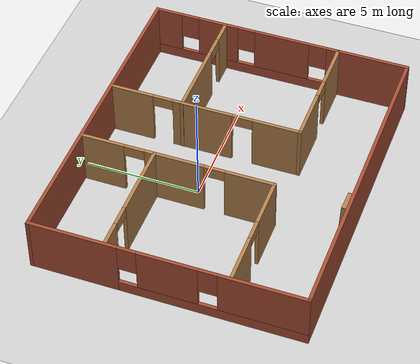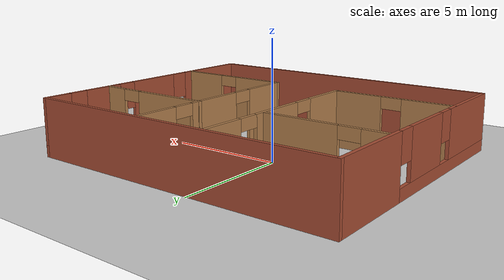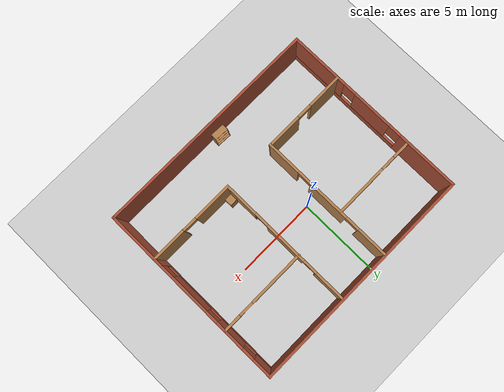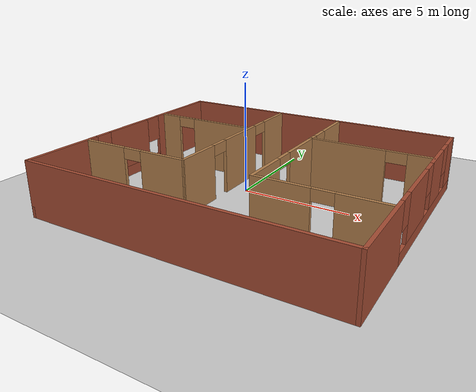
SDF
<sdf version="1.7">
 <world name="default">
  <light name="sun" type="directional">
   <pose>0 0 10 0 -0 0</pose>
   <diffuse>0.8 0.8 0.8 1</diffuse>
   <specular>0.2 0.2 0.2 1</specular>
   <attenuation>
    <range>1000</range>
    <constant>0.9</constant>
    <linear>0.01</linear>
    <quadratic>0.001</quadratic>
   </attenuation>
   <direction>-0.5 0.1 -0.9</direction>
   <spot><inner_angle>0</inner_angle><outer_angle>0</outer_angle><falloff>0</falloff></spot>
  </light>
  <model name="ground_plane">
   <static>1</static>
   <link name="link">
    <collision name="collision">
     <geometry><plane><normal>0 0 1</normal><size>100 100</size></plane></geometry>
     <surface><friction><ode><mu>100</mu><mu2>50</mu2></ode></friction></surface>
    </collision>
    <visual name="visual">
     <cast_shadows>0</cast_shadows>
     <geometry><plane><normal>0 0 1</normal><size>100 100</size></plane></geometry>
     <material>
      <script><uri>file://media/materials/scripts/gazebo.material</uri><name>Gazebo/Grey</name></script>
     </material>
    </visual>
   </link>
  </model>
  <gravity>0 0 -9.8</gravity>
  <magnetic_field>6e-06 2.3e-05 -4.2e-05</magnetic_field>
  <atmosphere type="adiabatic"/>
  <physics type="ode">
   <max_step_size>0.001</max_step_size>
   <real_time_factor>1</real_time_factor>
   <real_time_update_rate>1000</real_time_update_rate>
  </physics>
  <scene><ambient>0.4 0.4 0.4 1</ambient><background>0.7 0.7 0.7 1</background><shadows>1</shadows></scene>
  <audio><device>default</device></audio>
  <spherical_coordinates>
   <surface_model>EARTH_WGS84</surface_model>
   <latitude_deg>0</latitude_deg>
   <longitude_deg>0</longitude_deg>
   <elevation>0</elevation>
   <heading_deg>0</heading_deg>
  </spherical_coordinates>
  <model name="my_floor">
   <pose>0.930019 -0.93997 0 0 -0 0</pose>
   <link name="Wall_0">
    <pose>-6.925 0 0 0 -0 -1.5708</pose>
    <visual name="Wall_0_Visual_0">
     <pose>-3.94316 0 1.25 0 -0 0</pose>
     <geometry><box><size>3.86368 0.15 2.5</size></box></geometry>
     <material>
      <script><uri>file://media/materials/scripts/gazebo.material</uri><name>Gazebo/Bricks</name></script>
      <ambient>1 1 1 1</ambient>
     </material>
     <meta><layer>0</layer></meta>
    </visual>
    <collision name="Wall_0_Collision_0">
     <geometry><box><size>3.86368 0.15 2.5</size></box></geometry>
     <pose>-3.94316 0 1.25 0 -0 0</pose>
    </collision>
    <visual name="Wall_0_Visual_1">
     <pose>1.93184 0 0.25 0 -0 0</pose>
     <geometry><box><size>7.88632 0.15 0.5</size></box></geometry>
     <material>
      <script><uri>file://media/materials/scripts/gazebo.material</uri><name>Gazebo/Bricks</name></script>
      <ambient>1 1 1 1</ambient>
     </material>
     <meta><layer>0</layer></meta>
    </visual>
    <collision name="Wall_0_Collision_1">
     <geometry><box><size>7.88632 0.15 0.5</size></box></geometry>
     <pose>1.93184 0 0.25 0 -0 0</pose>
    </collision>
    <visual name="Wall_0_Visual_2">
     <pose>0.061646 0 1.5 0 -0 0</pose>
     <geometry><box><size>2.54592 0.15 2</size></box></geometry>
     <material>
      <script><uri>file://media/materials/scripts/gazebo.material</uri><name>Gazebo/Bricks</name></script>
      <ambient>1 1 1 1</ambient>
     </material>
     <meta><layer>0</layer></meta>
    </visual>
    <collision name="Wall_0_Collision_2">
     <geometry><box><size>2.54592 0.15 2</size></box></geometry>
     <pose>0.061646 0 1.5 0 -0 0</pose>
    </collision>
    <visual name="Wall_0_Visual_3">
     <pose>4.0048 0 1.5 0 -0 0</pose>
     <geometry><box><size>3.74039 0.15 2</size></box></geometry>
     <material>
      <script><uri>file://media/materials/scripts/gazebo.material</uri><name>Gazebo/Bricks</name></script>
      <ambient>1 1 1 1</ambient>
     </material>
     <meta><layer>0</layer></meta>
    </visual>
    <collision name="Wall_0_Collision_3">
     <geometry><box><size>3.74039 0.15 2</size></box></geometry>
     <pose>4.0048 0 1.5 0 -0 0</pose>
    </collision>
    <visual name="Wall_0_Visual_4">
     <pose>-1.61132 0 1.9 0 -0 0</pose>
     <geometry><box><size>0.8 0.15 1.2</size></box></geometry>
     <material>
      <script><uri>file://media/materials/scripts/gazebo.material</uri><name>Gazebo/Bricks</name></script>
      <ambient>1 1 1 1</ambient>
     </material>
     <meta><layer>0</layer></meta>
    </visual>
    <collision name="Wall_0_Collision_4">
     <geometry><box><size>0.8 0.15 1.2</size></box></geometry>
     <pose>-1.61132 0 1.9 0 -0 0</pose>
    </collision>
    <visual name="Wall_0_Visual_5">
     <pose>1.73461 0 1.9 0 -0 0</pose>
     <geometry><box><size>0.8 0.15 1.2</size></box></geometry>
     <material>
      <script><uri>file://media/materials/scripts/gazebo.material</uri><name>Gazebo/Bricks</name></script>
      <ambient>1 1 1 1</ambient>
     </material>
     <meta><layer>0</layer></meta>
    </visual>
    <collision name="Wall_0_Collision_5">
     <geometry><box><size>0.8 0.15 1.2</size></box></geometry>
     <pose>1.73461 0 1.9 0 -0 0</pose>
    </collision>
   </link>
   <link name="Wall_1">
    <collision name="Wall_1_Collision">
     <geometry><box><size>14 0.15 2.5</size></box></geometry>
     <pose>0 0 1.25 0 -0 0</pose>
    </collision>
    <visual name="Wall_1_Visual">
     <pose>0 0 1.25 0 -0 0</pose>
     <geometry><box><size>14 0.15 2.5</size></box></geometry>
     <material>
      <script><uri>file://media/materials/scripts/gazebo.material</uri><name>Gazebo/Bricks</name></script>
      <ambient>1 1 1 1</ambient>
     </material>
     <meta><layer>0</layer></meta>
    </visual>
    <pose>-0 -5.8 0 0 -0 0</pose>
   </link>
   <link name="Wall_10">
    <pose>-1.67435 1.53233 0 0 -0 1.5708</pose>
    <visual name="Wall_10_Visual_0">
     <pose>-3.15528 0 1.25 0 -0 0</pose>
     <geometry><box><size>2.18945 0.15 2.5</size></box></geometry>
     <material>
      <script><uri>file://media/materials/scripts/gazebo.material</uri><name>Gazebo/Wood</name></script>
      <ambient>1 1 1 1</ambient>
     </material>
     <meta><layer>0</layer></meta>
    </visual>
    <collision name="Wall_10_Collision_0">
     <geometry><box><size>2.18945 0.15 2.5</size></box></geometry>
     <pose>-3.15528 0 1.25 0 -0 0</pose>
    </collision>
    <visual name="Wall_10_Visual_1">
     <pose>0.141234 0 1.25 0 -0 0</pose>
     <geometry><box><size>2.60358 0.15 2.5</size></box></geometry>
     <material>
      <script><uri>file://media/materials/scripts/gazebo.material</uri><name>Gazebo/Wood</name></script>
      <ambient>1 1 1 1</ambient>
     </material>
     <meta><layer>0</layer></meta>
    </visual>
    <collision name="Wall_10_Collision_1">
     <geometry><box><size>2.60358 0.15 2.5</size></box></geometry>
     <pose>0.141234 0 1.25 0 -0 0</pose>
    </collision>
    <visual name="Wall_10_Visual_2">
     <pose>3.29651 0 1.25 0 -0 0</pose>
     <geometry><box><size>1.90698 0.15 2.5</size></box></geometry>
     <material>
      <script><uri>file://media/materials/scripts/gazebo.material</uri><name>Gazebo/Wood</name></script>
      <ambient>1 1 1 1</ambient>
     </material>
     <meta><layer>0</layer></meta>
    </visual>
    <collision name="Wall_10_Collision_2">
     <geometry><box><size>1.90698 0.15 2.5</size></box></geometry>
     <pose>3.29651 0 1.25 0 -0 0</pose>
    </collision>
    <visual name="Wall_10_Visual_3">
     <pose>-1.61055 0 2.25 0 -0 0</pose>
     <geometry><box><size>0.9 0.15 0.5</size></box></geometry>
     <material>
      <script><uri>file://media/materials/scripts/gazebo.material</uri><name>Gazebo/Wood</name></script>
      <ambient>1 1 1 1</ambient>
     </material>
     <meta><layer>0</layer></meta>
    </visual>
    <collision name="Wall_10_Collision_3">
     <geometry><box><size>0.9 0.15 0.5</size></box></geometry>
     <pose>-1.61055 0 2.25 0 -0 0</pose>
    </collision>
    <visual name="Wall_10_Visual_4">
     <pose>1.89302 0 2.25 0 -0 0</pose>
     <geometry><box><size>0.9 0.15 0.5</size></box></geometry>
     <material>
      <script><uri>file://media/materials/scripts/gazebo.material</uri><name>Gazebo/Wood</name></script>
      <ambient>1 1 1 1</ambient>
     </material>
     <meta><layer>0</layer></meta>
    </visual>
    <collision name="Wall_10_Collision_4">
     <geometry><box><size>0.9 0.15 0.5</size></box></geometry>
     <pose>1.89302 0 2.25 0 -0 0</pose>
    </collision>
   </link>
   <link name="Wall_13">
    <pose>-4.2302 2.54418 0 0 -0 3.14159</pose>
    <visual name="Wall_13_Visual_0">
     <pose>-0.972871 0 1.25 0 -0 0</pose>
     <geometry><box><size>3.30426 0.15 2.5</size></box></geometry>
     <material>
      <script><uri>file://media/materials/scripts/gazebo.material</uri><name>Gazebo/Wood</name></script>
      <ambient>1 1 1 1</ambient>
     </material>
     <meta><layer>0</layer></meta>
    </visual>
    <collision name="Wall_13_Collision_0">
     <geometry><box><size>3.30426 0.15 2.5</size></box></geometry>
     <pose>-0.972871 0 1.25 0 -0 0</pose>
    </collision>
    <visual name="Wall_13_Visual_1">
     <pose>2.10213 0 1.25 0 -0 0</pose>
     <geometry><box><size>1.04574 0.15 2.5</size></box></geometry>
     <material>
      <script><uri>file://media/materials/scripts/gazebo.material</uri><name>Gazebo/Wood</name></script>
      <ambient>1 1 1 1</ambient>
     </material>
     <meta><layer>0</layer></meta>
    </visual>
    <collision name="Wall_13_Collision_1">
     <geometry><box><size>1.04574 0.15 2.5</size></box></geometry>
     <pose>2.10213 0 1.25 0 -0 0</pose>
    </collision>
    <visual name="Wall_13_Visual_2">
     <pose>1.12926 0 2.25 0 -0 0</pose>
     <geometry><box><size>0.9 0.15 0.5</size></box></geometry>
     <material>
      <script><uri>file://media/materials/scripts/gazebo.material</uri><name>Gazebo/Wood</name></script>
      <ambient>1 1 1 1</ambient>
     </material>
     <meta><layer>0</layer></meta>
    </visual>
    <collision name="Wall_13_Collision_2">
     <geometry><box><size>0.9 0.15 0.5</size></box></geometry>
     <pose>1.12926 0 2.25 0 -0 0</pose>
    </collision>
   </link>
   <link name="Wall_15">
    <pose>4.20189 -2.68336 0 0 -0 0</pose>
    <visual name="Wall_15_Visual_0">
     <pose>-1.52074 0 1.25 0 -0 0</pose>
     <geometry><box><size>2.45852 0.15 2.5</size></box></geometry>
     <material>
      <script><uri>file://media/materials/scripts/gazebo.material</uri><name>Gazebo/Wood</name></script>
      <ambient>1 1 1 1</ambient>
     </material>
     <meta><layer>0</layer></meta>
    </visual>
    <collision name="Wall_15_Collision_0">
     <geometry><box><size>2.45852 0.15 2.5</size></box></geometry>
     <pose>-1.52074 0 1.25 0 -0 0</pose>
    </collision>
    <visual name="Wall_15_Visual_1">
     <pose>1.67926 0 1.25 0 -0 0</pose>
     <geometry><box><size>2.14148 0.15 2.5</size></box></geometry>
     <material>
      <script><uri>file://media/materials/scripts/gazebo.material</uri><name>Gazebo/Wood</name></script>
      <ambient>1 1 1 1</ambient>
     </material>
     <meta><layer>0</layer></meta>
    </visual>
    <collision name="Wall_15_Collision_1">
     <geometry><box><size>2.14148 0.15 2.5</size></box></geometry>
     <pose>1.67926 0 1.25 0 -0 0</pose>
    </collision>
    <visual name="Wall_15_Visual_2">
     <pose>0.158523 0 2.25 0 -0 0</pose>
     <geometry><box><size>0.9 0.15 0.5</size></box></geometry>
     <material>
      <script><uri>file://media/materials/scripts/gazebo.material</uri><name>Gazebo/Wood</name></script>
      <ambient>1 1 1 1</ambient>
     </material>
     <meta><layer>0</layer></meta>
    </visual>
    <collision name="Wall_15_Collision_2">
     <geometry><box><size>0.9 0.15 0.5</size></box></geometry>
     <pose>0.158523 0 2.25 0 -0 0</pose>
    </collision>
   </link>
   <link name="Wall_17">
    <pose>1.52689 1.49164 0 0 -0 1.5708</pose>
    <visual name="Wall_17_Visual_0">
     <pose>-3.1709 0 1.25 0 -0 0</pose>
     <geometry><box><size>2.15819 0.15 2.5</size></box></geometry>
     <material>
      <script><uri>file://media/materials/scripts/gazebo.material</uri><name>Gazebo/Wood</name></script>
      <ambient>1 1 1 1</ambient>
     </material>
     <meta><layer>0</layer></meta>
    </visual>
    <collision name="Wall_17_Collision_0">
     <geometry><box><size>2.15819 0.15 2.5</size></box></geometry>
     <pose>-3.1709 0 1.25 0 -0 0</pose>
    </collision>
    <visual name="Wall_17_Visual_1">
     <pose>0.140204 0 1.25 0 -0 0</pose>
     <geometry><box><size>2.66402 0.15 2.5</size></box></geometry>
     <material>
      <script><uri>file://media/materials/scripts/gazebo.material</uri><name>Gazebo/Wood</name></script>
      <ambient>1 1 1 1</ambient>
     </material>
     <meta><layer>0</layer></meta>
    </visual>
    <collision name="Wall_17_Collision_1">
     <geometry><box><size>2.66402 0.15 2.5</size></box></geometry>
     <pose>0.140204 0 1.25 0 -0 0</pose>
    </collision>
    <visual name="Wall_17_Visual_2">
     <pose>3.31111 0 1.25 0 -0 0</pose>
     <geometry><box><size>1.87779 0.15 2.5</size></box></geometry>
     <material>
      <script><uri>file://media/materials/scripts/gazebo.material</uri><name>Gazebo/Wood</name></script>
      <ambient>1 1 1 1</ambient>
     </material>
     <meta><layer>0</layer></meta>
    </visual>
    <collision name="Wall_17_Collision_2">
     <geometry><box><size>1.87779 0.15 2.5</size></box></geometry>
     <pose>3.31111 0 1.25 0 -0 0</pose>
    </collision>
    <visual name="Wall_17_Visual_3">
     <pose>-1.64181 0 2.25 0 -0 0</pose>
     <geometry><box><size>0.9 0.15 0.5</size></box></geometry>
     <material>
      <script><uri>file://media/materials/scripts/gazebo.material</uri><name>Gazebo/Wood</name></script>
      <ambient>1 1 1 1</ambient>
     </material>
     <meta><layer>0</layer></meta>
    </visual>
    <collision name="Wall_17_Collision_3">
     <geometry><box><size>0.9 0.15 0.5</size></box></geometry>
     <pose>-1.64181 0 2.25 0 -0 0</pose>
    </collision>
    <visual name="Wall_17_Visual_4">
     <pose>1.92221 0 2.25 0 -0 0</pose>
     <geometry><box><size>0.9 0.15 0.5</size></box></geometry>
     <material>
      <script><uri>file://media/materials/scripts/gazebo.material</uri><name>Gazebo/Wood</name></script>
      <ambient>1 1 1 1</ambient>
     </material>
     <meta><layer>0</layer></meta>
    </visual>
    <collision name="Wall_17_Collision_4">
     <geometry><box><size>0.9 0.15 0.5</size></box></geometry>
     <pose>1.92221 0 2.25 0 -0 0</pose>
    </collision>
   </link>
   <link name="Wall_2">
    <pose>6.925 0 0 0 -0 1.5708</pose>
    <visual name="Wall_2_Visual_0">
     <pose>-4.01695 0 1.25 0 -0 0</pose>
     <geometry><box><size>3.71611 0.15 2.5</size></box></geometry>
     <material>
      <script><uri>file://media/materials/scripts/gazebo.material</uri><name>Gazebo/Bricks</name></script>
      <ambient>1 1 1 1</ambient>
     </material>
     <meta><layer>0</layer></meta>
    </visual>
    <collision name="Wall_2_Collision_0">
     <geometry><box><size>3.71611 0.15 2.5</size></box></geometry>
     <pose>-4.01695 0 1.25 0 -0 0</pose>
    </collision>
    <visual name="Wall_2_Visual_1">
     <pose>1.85805 0 0.25 0 -0 0</pose>
     <geometry><box><size>8.03389 0.15 0.5</size></box></geometry>
     <material>
      <script><uri>file://media/materials/scripts/gazebo.material</uri><name>Gazebo/Bricks</name></script>
      <ambient>1 1 1 1</ambient>
     </material>
     <meta><layer>0</layer></meta>
    </visual>
    <collision name="Wall_2_Collision_1">
     <geometry><box><size>8.03389 0.15 0.5</size></box></geometry>
     <pose>1.85805 0 0.25 0 -0 0</pose>
    </collision>
    <visual name="Wall_2_Visual_2">
     <pose>-0.099524 0 1.5 0 -0 0</pose>
     <geometry><box><size>2.51874 0.15 2</size></box></geometry>
     <material>
      <script><uri>file://media/materials/scripts/gazebo.material</uri><name>Gazebo/Bricks</name></script>
      <ambient>1 1 1 1</ambient>
     </material>
     <meta><layer>0</layer></meta>
    </visual>
    <collision name="Wall_2_Collision_2">
     <geometry><box><size>2.51874 0.15 2</size></box></geometry>
     <pose>-0.099524 0 1.5 0 -0 0</pose>
    </collision>
    <visual name="Wall_2_Visual_3">
     <pose>2.88734 0 1.5 0 -0 0</pose>
     <geometry><box><size>1.85499 0.15 2</size></box></geometry>
     <material>
      <script><uri>file://media/materials/scripts/gazebo.material</uri><name>Gazebo/Bricks</name></script>
      <ambient>1 1 1 1</ambient>
     </material>
     <meta><layer>0</layer></meta>
    </visual>
    <collision name="Wall_2_Collision_3">
     <geometry><box><size>1.85499 0.15 2</size></box></geometry>
     <pose>2.88734 0 1.5 0 -0 0</pose>
    </collision>
    <visual name="Wall_2_Visual_4">
     <pose>5.24492 0 1.5 0 -0 0</pose>
     <geometry><box><size>1.26016 0.15 2</size></box></geometry>
     <material>
      <script><uri>file://media/materials/scripts/gazebo.material</uri><name>Gazebo/Bricks</name></script>
      <ambient>1 1 1 1</ambient>
     </material>
     <meta><layer>0</layer></meta>
    </visual>
    <collision name="Wall_2_Collision_4">
     <geometry><box><size>1.26016 0.15 2</size></box></geometry>
     <pose>5.24492 0 1.5 0 -0 0</pose>
    </collision>
    <visual name="Wall_2_Visual_5">
     <pose>-1.75889 0 1.9 0 -0 0</pose>
     <geometry><box><size>0.8 0.15 1.2</size></box></geometry>
     <material>
      <script><uri>file://media/materials/scripts/gazebo.material</uri><name>Gazebo/Bricks</name></script>
      <ambient>1 1 1 1</ambient>
     </material>
     <meta><layer>0</layer></meta>
    </visual>
    <collision name="Wall_2_Collision_5">
     <geometry><box><size>0.8 0.15 1.2</size></box></geometry>
     <pose>-1.75889 0 1.9 0 -0 0</pose>
    </collision>
    <visual name="Wall_2_Visual_6">
     <pose>1.55985 0 1.9 0 -0 0</pose>
     <geometry><box><size>0.8 0.15 1.2</size></box></geometry>
     <material>
      <script><uri>file://media/materials/scripts/gazebo.material</uri><name>Gazebo/Bricks</name></script>
      <ambient>1 1 1 1</ambient>
     </material>
     <meta><layer>0</layer></meta>
    </visual>
    <collision name="Wall_2_Collision_6">
     <geometry><box><size>0.8 0.15 1.2</size></box></geometry>
     <pose>1.55985 0 1.9 0 -0 0</pose>
    </collision>
    <visual name="Wall_2_Visual_7">
     <pose>4.21484 0 1.9 0 -0 0</pose>
     <geometry><box><size>0.8 0.15 1.2</size></box></geometry>
     <material>
      <script><uri>file://media/materials/scripts/gazebo.material</uri><name>Gazebo/Bricks</name></script>
      <ambient>1 1 1 1</ambient>
     </material>
     <meta><layer>0</layer></meta>
    </visual>
    <collision name="Wall_2_Collision_7">
     <geometry><box><size>0.8 0.15 1.2</size></box></geometry>
     <pose>4.21484 0 1.9 0 -0 0</pose>
    </collision>
   </link>
   <link name="Wall_22">
    <pose>4.18054 2.55201 0 0 -0 0</pose>
    <visual name="Wall_22_Visual_0">
     <pose>-0.999502 0 1.25 0 -0 0</pose>
     <geometry><box><size>3.501 0.15 2.5</size></box></geometry>
     <material>
      <script><uri>file://media/materials/scripts/gazebo.material</uri><name>Gazebo/Wood</name></script>
      <ambient>1 1 1 1</ambient>
     </material>
     <meta><layer>0</layer></meta>
    </visual>
    <collision name="Wall_22_Collision_0">
     <geometry><box><size>3.501 0.15 2.5</size></box></geometry>
     <pose>-0.999502 0 1.25 0 -0 0</pose>
    </collision>
    <visual name="Wall_22_Visual_1">
     <pose>2.2005 0 1.25 0 -0 0</pose>
     <geometry><box><size>1.099 0.15 2.5</size></box></geometry>
     <material>
      <script><uri>file://media/materials/scripts/gazebo.material</uri><name>Gazebo/Wood</name></script>
      <ambient>1 1 1 1</ambient>
     </material>
     <meta><layer>0</layer></meta>
    </visual>
    <collision name="Wall_22_Collision_1">
     <geometry><box><size>1.099 0.15 2.5</size></box></geometry>
     <pose>2.2005 0 1.25 0 -0 0</pose>
    </collision>
    <visual name="Wall_22_Visual_2">
     <pose>1.201 0 2.25 0 -0 0</pose>
     <geometry><box><size>0.9 0.15 0.5</size></box></geometry>
     <material>
      <script><uri>file://media/materials/scripts/gazebo.material</uri><name>Gazebo/Wood</name></script>
      <ambient>1 1 1 1</ambient>
     </material>
     <meta><layer>0</layer></meta>
    </visual>
    <collision name="Wall_22_Collision_2">
     <geometry><box><size>0.9 0.15 0.5</size></box></geometry>
     <pose>1.201 0 2.25 0 -0 0</pose>
    </collision>
   </link>
   <link name="Wall_3">
    <collision name="Wall_3_Collision">
     <geometry><box><size>14 0.15 2.5</size></box></geometry>
     <pose>0 0 1.25 0 -0 0</pose>
    </collision>
    <visual name="Wall_3_Visual">
     <pose>0 0 1.25 0 -0 0</pose>
     <geometry><box><size>14 0.15 2.5</size></box></geometry>
     <material>
      <script><uri>file://media/materials/scripts/gazebo.material</uri><name>Gazebo/Bricks</name></script>
      <ambient>1 1 1 1</ambient>
     </material>
     <meta><layer>0</layer></meta>
    </visual>
    <pose>-0 5.8 0 0 -0 3.14159</pose>
   </link>
   <link name="Wall_9">
    <pose>-4.28811 -2.65424 0 0 -0 0.004425</pose>
    <visual name="Wall_9_Visual_0">
     <pose>-1.57095 0 1.25 0 -0 0</pose>
     <geometry><box><size>2.23568 0.15 2.5</size></box></geometry>
     <material>
      <script><uri>file://media/materials/scripts/gazebo.material</uri><name>Gazebo/Wood</name></script>
      <ambient>1 1 1 1</ambient>
     </material>
     <meta><layer>0</layer></meta>
    </visual>
    <collision name="Wall_9_Collision_0">
     <geometry><box><size>2.23568 0.15 2.5</size></box></geometry>
     <pose>-1.57095 0 1.25 0 -0 0</pose>
    </collision>
    <visual name="Wall_9_Visual_1">
     <pose>1.56784 0 1.25 0 -0 0</pose>
     <geometry><box><size>2.24189 0.15 2.5</size></box></geometry>
     <material>
      <script><uri>file://media/materials/scripts/gazebo.material</uri><name>Gazebo/Wood</name></script>
      <ambient>1 1 1 1</ambient>
     </material>
     <meta><layer>0</layer></meta>
    </visual>
    <collision name="Wall_9_Collision_1">
     <geometry><box><size>2.24189 0.15 2.5</size></box></geometry>
     <pose>1.56784 0 1.25 0 -0 0</pose>
    </collision>
    <visual name="Wall_9_Visual_2">
     <pose>-0.003105 0 2.25 0 -0 0</pose>
     <geometry><box><size>0.9 0.15 0.5</size></box></geometry>
     <material>
      <script><uri>file://media/materials/scripts/gazebo.material</uri><name>Gazebo/Wood</name></script>
      <ambient>1 1 1 1</ambient>
     </material>
     <meta><layer>0</layer></meta>
    </visual>
    <collision name="Wall_9_Collision_2">
     <geometry><box><size>0.9 0.15 0.5</size></box></geometry>
     <pose>-0.003105 0 2.25 0 -0 0</pose>
    </collision>
   </link>
   <static>1</static>
  </model>
  <model name="bookshelf">
   <static>1</static>
   <link name="link">
    <inertial><mass>1</mass></inertial>
    <collision name="back">
     <pose>0 0.005 0.6 0 -0 0</pose>
     <geometry><box><size>0.9 0.01 1.2</size></box></geometry>
    </collision>
    <visual name="visual1">
     <pose>0 0.005 0.6 0 -0 0</pose>
     <geometry><box><size>0.9 0.01 1.2</size></box></geometry>
     <material>
      <script><uri>file://media/materials/scripts/gazebo.material</uri><name>Gazebo/Wood</name></script>
     </material>
    </visual>
    <collision name="left_side">
     <pose>0.45 -0.195 0.6 0 -0 0</pose>
     <geometry><box><size>0.02 0.4 1.2</size></box></geometry>
    </collision>
    <visual name="visual2">
     <pose>0.45 -0.195 0.6 0 -0 0</pose>
     <geometry><box><size>0.02 0.4 1.2</size></box></geometry>
     <material>
      <script><uri>file://media/materials/scripts/gazebo.material</uri><name>Gazebo/Wood</name></script>
     </material>
    </visual>
    <collision name="right_side">
     <pose>-0.45 -0.195 0.6 0 -0 0</pose>
     <geometry><box><size>0.02 0.4 1.2</size></box></geometry>
    </collision>
    <visual name="visual3">
     <pose>-0.45 -0.195 0.6 0 -0 0</pose>
     <geometry><box><size>0.02 0.4 1.2</size></box></geometry>
     <material>
      <script><uri>file://media/materials/scripts/gazebo.material</uri><name>Gazebo/Wood</name></script>
     </material>
    </visual>
    <collision name="bottom">
     <pose>0 -0.195 0.03 0 -0 0</pose>
     <geometry><box><size>0.88 0.4 0.06</size></box></geometry>
    </collision>
    <visual name="visual4">
     <pose>0 -0.195 0.03 0 -0 0</pose>
     <geometry><box><size>0.88 0.4 0.06</size></box></geometry>
     <material>
      <script><uri>file://media/materials/scripts/gazebo.material</uri><name>Gazebo/Wood</name></script>
     </material>
    </visual>
    <collision name="top">
     <pose>0 -0.195 1.19 0 -0 0</pose>
     <geometry><box><size>0.88 0.4 0.02</size></box></geometry>
    </collision>
    <visual name="visual5">
     <pose>0 -0.195 1.19 0 -0 0</pose>
     <geometry><box><size>0.88 0.4 0.02</size></box></geometry>
     <material>
      <script><uri>file://media/materials/scripts/gazebo.material</uri><name>Gazebo/Wood</name></script>
     </material>
    </visual>
    <collision name="low_shelf">
     <pose>0 -0.195 0.43 0 -0 0</pose>
     <geometry><box><size>0.88 0.4 0.02</size></box></geometry>
    </collision>
    <visual name="visual6">
     <pose>0 -0.195 0.43 0 -0 0</pose>
     <geometry><box><size>0.88 0.4 0.02</size></box></geometry>
     <material>
      <script><uri>file://media/materials/scripts/gazebo.material</uri><name>Gazebo/Wood</name></script>
     </material>
    </visual>
    <collision name="high_shelf">
     <pose>0 -0.195 0.8 0 -0 0</pose>
     <geometry><box><size>0.88 0.4 0.02</size></box></geometry>
    </collision>
    <visual name="visual7">
     <pose>0 -0.195 0.8 0 -0 0</pose>
     <geometry><box><size>0.88 0.4 0.02</size></box></geometry>
     <material>
      <script><uri>file://media/materials/scripts/gazebo.material</uri><name>Gazebo/Wood</name></script>
     </material>
    </visual>
   </link>
   <pose>0.545535 -6.54744 0 -0.04061 -0 3.10541</pose>
  </model>
  <model name="cabinet">
   <static>1</static>
   <link name="cabinet_bottom_plate">
    <inertial>
     <pose>0 0 -1 0 -0 0</pose>
     <inertia><ixx>2.05</ixx><ixy>0</ixy><ixz>0</ixz><iyy>2.05</iyy><iyz>0</iyz><izz>2.05</izz></inertia>
     <mass>25</mass>
    </inertial>
    <collision name="cabinet_bottom_plate_geom">
     <pose>0 0 0.01 0 -0 0</pose>
     <geometry><box><size>0.45 0.45 0.02</size></box></geometry>
    </collision>
    <visual name="cabinet_bottom_plate_geom_visual">
     <pose>0 0 0.01 0 -0 0</pose>
     <geometry><box><size>0.45 0.45 0.02</size></box></geometry>
     <material>
      <script><uri>file://media/materials/scripts/gazebo.material</uri><name>Gazebo/Wood</name></script>
     </material>
    </visual>
    <collision name="cabinet_bottom_plate_geom_cabinet_back_plate">
     <pose>0.235 0 0.51 0 -0 0</pose>
     <geometry><box><size>0.02 0.45 1.02</size></box></geometry>
    </collision>
    <visual name="cabinet_bottom_plate_geom_cabinet_back_plate_visual">
     <pose>0.235 0 0.51 0 -0 0</pose>
     <geometry><box><size>0.02 0.45 1.02</size></box></geometry>
     <material>
      <script><uri>file://media/materials/scripts/gazebo.material</uri><name>Gazebo/Wood</name></script>
     </material>
    </visual>
    <collision name="cabinet_bottom_plate_geom_cabinet_left_plate">
     <pose>0 0.235 0.51 0 -0 0</pose>
     <geometry><box><size>0.45 0.02 1.02</size></box></geometry>
    </collision>
    <visual name="cabinet_bottom_plate_geom_cabinet_left_plate_visual">
     <pose>0 0.235 0.51 0 -0 0</pose>
     <geometry><box><size>0.45 0.02 1.02</size></box></geometry>
     <material>
      <script><uri>file://media/materials/scripts/gazebo.material</uri><name>Gazebo/Wood</name></script>
     </material>
    </visual>
    <collision name="cabinet_bottom_plate_geom_cabinet_middle_plate">
     <pose>0 0 0.51 0 -0 0</pose>
     <geometry><box><size>0.45 0.45 0.02</size></box></geometry>
    </collision>
    <visual name="cabinet_bottom_plate_geom_cabinet_middle_plate_visual">
     <pose>0 0 0.51 0 -0 0</pose>
     <geometry><box><size>0.45 0.45 0.02</size></box></geometry>
     <material>
      <script><uri>file://media/materials/scripts/gazebo.material</uri><name>Gazebo/Wood</name></script>
     </material>
    </visual>
    <collision name="cabinet_bottom_plate_geom_cabinet_right_plate">
     <pose>0 -0.235 0.51 0 -0 0</pose>
     <geometry><box><size>0.45 0.02 1.02</size></box></geometry>
    </collision>
    <visual name="cabinet_bottom_plate_geom_cabinet_right_plate_visual">
     <pose>0 -0.235 0.51 0 -0 0</pose>
     <geometry><box><size>0.45 0.02 1.02</size></box></geometry>
     <material>
      <script><uri>file://media/materials/scripts/gazebo.material</uri><name>Gazebo/Wood</name></script>
     </material>
    </visual>
    <collision name="cabinet_bottom_plate_geom_cabinet_top_plate">
     <pose>0 0 1.01 0 -0 0</pose>
     <geometry><box><size>0.45 0.45 0.02</size></box></geometry>
    </collision>
    <visual name="cabinet_bottom_plate_geom_cabinet_top_plate_visual">
     <pose>0 0 1.01 0 -0 0</pose>
     <geometry><box><size>0.45 0.45 0.02</size></box></geometry>
     <material>
      <script><uri>file://media/materials/scripts/gazebo.material</uri><name>Gazebo/Wood</name></script>
     </material>
    </visual>
   </link>
   <pose>2.79846 -3.24539 0 0 0 -3.10083</pose>
  </model>
 </world>
</sdf>
